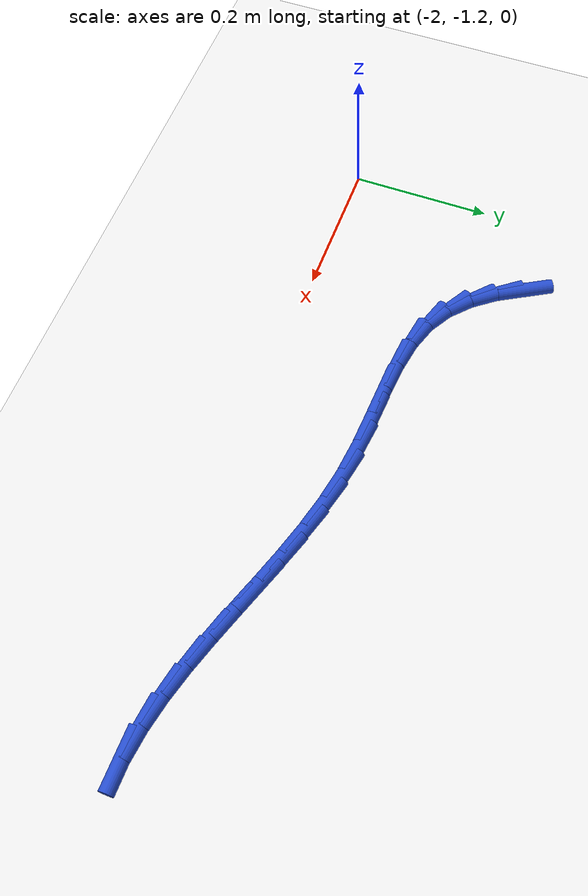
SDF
<sdf version="1.6">
 <world name="default">
  <model name="ground_plane">
   <static>1</static>
   <link name="link">
    <collision name="collision">
     <geometry><plane><normal>0 0 1</normal><size>100 100</size></plane></geometry>
     <surface><friction><ode><mu>100</mu><mu2>50</mu2></ode></friction></surface>
    </collision>
    <visual name="visual">
     <cast_shadows>0</cast_shadows>
     <geometry><plane><normal>0 0 1</normal><size>100 100</size></plane></geometry>
     <material>
      <script><uri>file://media/materials/scripts/gazebo.material</uri><name>Gazebo/WhiteGlow</name></script>
     </material>
    </visual>
   </link>
  </model>
  <model name="line">
   <link name="link_110">
    <pose>-1.8798471214212593 -0.9069378773192146 0.01 0 1.57 -1.0662351902798608</pose>
    <collision name="collision">
     <geometry><cylinder><radius>0.01</radius><length>0.08</length></cylinder></geometry>
    </collision>
    <visual name="visual">
     <material>
      <script><name>Gazebo/Blue</name><uri>file://media/materials/scripts/gazebo.material</uri></script>
     </material>
     <geometry><cylinder><radius>0.01</radius><length>0.08</length></cylinder></geometry>
    </visual>
   </link>
   <link name="link_111">
    <pose>-1.8598727924586214 -0.9431075485071858 0.01 0 1.57 -0.9296053693973858</pose>
    <collision name="collision">
     <geometry><cylinder><radius>0.01</radius><length>0.08</length></cylinder></geometry>
    </collision>
    <visual name="visual">
     <material>
      <script><name>Gazebo/Blue</name><uri>file://media/materials/scripts/gazebo.material</uri></script>
     </material>
     <geometry><cylinder><radius>0.01</radius><length>0.08</length></cylinder></geometry>
    </visual>
   </link>
   <link name="link_112">
    <pose>-1.8364864990736423 -0.974439808853218 0.01 0 1.57 -0.7540492143827873</pose>
    <collision name="collision">
     <geometry><cylinder><radius>0.01</radius><length>0.08</length></cylinder></geometry>
    </collision>
    <visual name="visual">
     <material>
      <script><name>Gazebo/Blue</name><uri>file://media/materials/scripts/gazebo.material</uri></script>
     </material>
     <geometry><cylinder><radius>0.01</radius><length>0.08</length></cylinder></geometry>
    </visual>
   </link>
   <link name="link_113">
    <pose>-1.8091406512465524 -1.0001227161487019 0.01 0 1.57 -0.5429506515845325</pose>
    <collision name="collision">
     <geometry><cylinder><radius>0.01</radius><length>0.08</length></cylinder></geometry>
    </collision>
    <visual name="visual">
     <material>
      <script><name>Gazebo/Blue</name><uri>file://media/materials/scripts/gazebo.material</uri></script>
     </material>
     <geometry><cylinder><radius>0.01</radius><length>0.08</length></cylinder></geometry>
    </visual>
   </link>
   <link name="link_114">
    <pose>-1.7772876589575832 -1.0193443281850278 0.01 0 1.57 -0.3260137020982728</pose>
    <collision name="collision">
     <geometry><cylinder><radius>0.01</radius><length>0.08</length></cylinder></geometry>
    </collision>
    <visual name="visual">
     <material>
      <script><name>Gazebo/Blue</name><uri>file://media/materials/scripts/gazebo.material</uri></script>
     </material>
     <geometry><cylinder><radius>0.01</radius><length>0.08</length></cylinder></geometry>
    </visual>
   </link>
   <link name="link_115">
    <pose>-1.7406393685646613 -1.0317342698278833 0.01 0 1.57 -0.17166719663006197</pose>
    <collision name="collision">
     <geometry><cylinder><radius>0.01</radius><length>0.08</length></cylinder></geometry>
    </collision>
    <visual name="visual">
     <material>
      <script><name>Gazebo/Blue</name><uri>file://media/materials/scripts/gazebo.material</uri></script>
     </material>
     <geometry><cylinder><radius>0.01</radius><length>0.08</length></cylinder></geometry>
    </visual>
   </link>
   <link name="link_116">
    <pose>-1.6999992814517906 -1.0387801895566176 0.01 0 1.57 -0.08427535168264245</pose>
    <collision name="collision">
     <geometry><cylinder><radius>0.01</radius><length>0.08</length></cylinder></geometry>
    </collision>
    <visual name="visual">
     <material>
      <script><name>Gazebo/Blue</name><uri>file://media/materials/scripts/gazebo.material</uri></script>
     </material>
     <geometry><cylinder><radius>0.01</radius><length>0.08</length></cylinder></geometry>
    </visual>
   </link>
   <link name="link_117">
    <pose>-1.6564579829648138 -1.0424583597908048 0.01 0 1.57 -0.0503784705942854</pose>
    <collision name="collision">
     <geometry><cylinder><radius>0.01</radius><length>0.08</length></cylinder></geometry>
    </collision>
    <visual name="visual">
     <material>
      <script><name>Gazebo/Blue</name><uri>file://media/materials/scripts/gazebo.material</uri></script>
     </material>
     <geometry><cylinder><radius>0.01</radius><length>0.08</length></cylinder></geometry>
    </visual>
   </link>
   <link name="link_118">
    <pose>-1.6111060597624476 -1.04474505518456 0.01 0 1.57 -0.062245791102888304</pose>
    <collision name="collision">
     <geometry><cylinder><radius>0.01</radius><length>0.08</length></cylinder></geometry>
    </collision>
    <visual name="visual">
     <material>
      <script><name>Gazebo/Blue</name><uri>file://media/materials/scripts/gazebo.material</uri></script>
     </material>
     <geometry><cylinder><radius>0.01</radius><length>0.08</length></cylinder></geometry>
    </visual>
   </link>
   <link name="link_119">
    <pose>-1.5650340985034084 -1.047616550391999 0.01 0 1.57 -0.11785335257522353</pose>
    <collision name="collision">
     <geometry><cylinder><radius>0.01</radius><length>0.08</length></cylinder></geometry>
    </collision>
    <visual name="visual">
     <material>
      <script><name>Gazebo/Blue</name><uri>file://media/materials/scripts/gazebo.material</uri></script>
     </material>
     <geometry><cylinder><radius>0.01</radius><length>0.08</length></cylinder></geometry>
    </visual>
   </link>
   <link name="link_120">
    <pose>-1.5193237875129297 -1.0530287444212398 0.01 0 1.57 -0.195227843168695</pose>
    <collision name="collision">
     <geometry><cylinder><radius>0.01</radius><length>0.08</length></cylinder></geometry>
    </collision>
    <visual name="visual">
     <material>
      <script><name>Gazebo/Blue</name><uri>file://media/materials/scripts/gazebo.material</uri></script>
     </material>
     <geometry><cylinder><radius>0.01</radius><length>0.08</length></cylinder></geometry>
    </visual>
   </link>
   <link name="link_121">
    <pose>-1.4745924466220106 -1.0618742126738996 0.01 0 1.57 -0.25898389134966976</pose>
    <collision name="collision">
     <geometry><cylinder><radius>0.01</radius><length>0.08</length></cylinder></geometry>
    </collision>
    <visual name="visual">
     <material>
      <script><name>Gazebo/Blue</name><uri>file://media/materials/scripts/gazebo.material</uri></script>
     </material>
     <geometry><cylinder><radius>0.01</radius><length>0.08</length></cylinder></geometry>
    </visual>
   </link>
   <link name="link_122">
    <pose>-1.4307749897255082 -1.0734829388811264 0.01 0 1.57 -0.3056844743716692</pose>
    <collision name="collision">
     <geometry><cylinder><radius>0.01</radius><length>0.08</length></cylinder></geometry>
    </collision>
    <visual name="visual">
     <material>
      <script><name>Gazebo/Blue</name><uri>file://media/materials/scripts/gazebo.material</uri></script>
     </material>
     <geometry><cylinder><radius>0.01</radius><length>0.08</length></cylinder></geometry>
    </visual>
   </link>
   <link name="link_123">
    <pose>-1.387751789027084 -1.0870600157263208 0.01 0 1.57 -0.3351703319907324</pose>
    <collision name="collision">
     <geometry><cylinder><radius>0.01</radius><length>0.08</length></cylinder></geometry>
    </collision>
    <visual name="visual">
     <material>
      <script><name>Gazebo/Blue</name><uri>file://media/materials/scripts/gazebo.material</uri></script>
     </material>
     <geometry><cylinder><radius>0.01</radius><length>0.08</length></cylinder></geometry>
    </visual>
   </link>
   <link name="link_124">
    <pose>-1.345403216730399 -1.1018105358928842 0.01 0 1.57 -0.34732040318109336</pose>
    <collision name="collision">
     <geometry><cylinder><radius>0.01</radius><length>0.08</length></cylinder></geometry>
    </collision>
    <visual name="visual">
     <material>
      <script><name>Gazebo/Blue</name><uri>file://media/materials/scripts/gazebo.material</uri></script>
     </material>
     <geometry><cylinder><radius>0.01</radius><length>0.08</length></cylinder></geometry>
    </visual>
   </link>
   <link name="link_125">
    <pose>-1.3036096450391144 -1.1169395920642173 0.01 0 1.57 -0.34177749065264895</pose>
    <collision name="collision">
     <geometry><cylinder><radius>0.01</radius><length>0.08</length></cylinder></geometry>
    </collision>
    <visual name="visual">
     <material>
      <script><name>Gazebo/Blue</name><uri>file://media/materials/scripts/gazebo.material</uri></script>
     </material>
     <geometry><cylinder><radius>0.01</radius><length>0.08</length></cylinder></geometry>
    </visual>
   </link>
   <link name="link_126">
    <pose>-1.2622514461568917 -1.1316522769237216 0.01 0 1.57 -0.31781117617825416</pose>
    <collision name="collision">
     <geometry><cylinder><radius>0.01</radius><length>0.08</length></cylinder></geometry>
    </collision>
    <visual name="visual">
     <material>
      <script><name>Gazebo/Blue</name><uri>file://media/materials/scripts/gazebo.material</uri></script>
     </material>
     <geometry><cylinder><radius>0.01</radius><length>0.08</length></cylinder></geometry>
    </visual>
   </link>
   <link name="link_127">
    <pose>-1.2212089922873932 -1.145153683154797 0.01 0 1.57 -0.2743305229314079</pose>
    <collision name="collision">
     <geometry><cylinder><radius>0.01</radius><length>0.08</length></cylinder></geometry>
    </collision>
    <visual name="visual">
     <material>
      <script><name>Gazebo/Blue</name><uri>file://media/materials/scripts/gazebo.material</uri></script>
     </material>
     <geometry><cylinder><radius>0.01</radius><length>0.08</length></cylinder></geometry>
    </visual>
   </link>
   <link name="link_128">
    <pose>-1.1803626556342794 -1.156648903440845 0.01 0 1.57 -0.210101873042567</pose>
    <collision name="collision">
     <geometry><cylinder><radius>0.01</radius><length>0.08</length></cylinder></geometry>
    </collision>
    <visual name="visual">
     <material>
      <script><name>Gazebo/Blue</name><uri>file://media/materials/scripts/gazebo.material</uri></script>
     </material>
     <geometry><cylinder><radius>0.01</radius><length>0.08</length></cylinder></geometry>
    </visual>
   </link>
   <link name="link_129">
    <pose>-1.1395928084012121 -1.1653430304652659 0.01 0 1.57 -0.12427063426312199</pose>
    <collision name="collision">
     <geometry><cylinder><radius>0.01</radius><length>0.08</length></cylinder></geometry>
    </collision>
    <visual name="visual">
     <material>
      <script><name>Gazebo/Blue</name><uri>file://media/materials/scripts/gazebo.material</uri></script>
     </material>
     <geometry><cylinder><radius>0.01</radius><length>0.08</length></cylinder></geometry>
    </visual>
   </link>
   <link name="link_130">
    <pose>-1.0987798227918526 -1.1704411569114612 0.01 0 1.57 -0.017257727048926495</pose>
    <collision name="collision">
     <geometry><cylinder><radius>0.01</radius><length>0.08</length></cylinder></geometry>
    </collision>
    <visual name="visual">
     <material>
      <script><name>Gazebo/Blue</name><uri>file://media/materials/scripts/gazebo.material</uri></script>
     </material>
     <geometry><cylinder><radius>0.01</radius><length>0.08</length></cylinder></geometry>
    </visual>
   </link>
  </model>
 </world>
</sdf>
